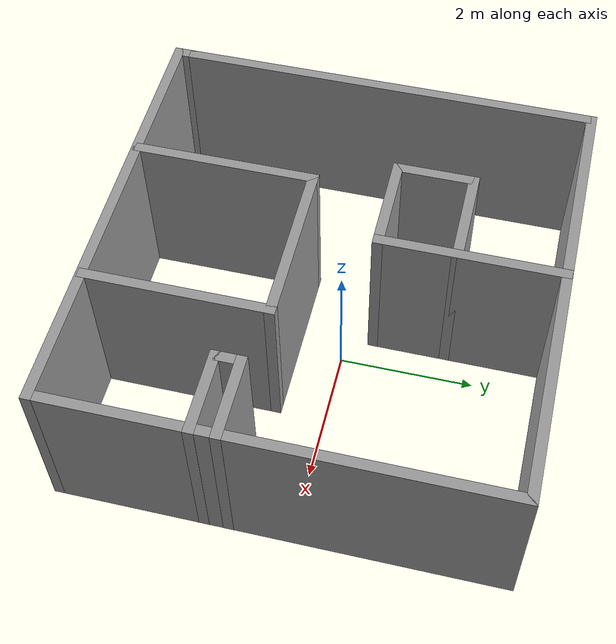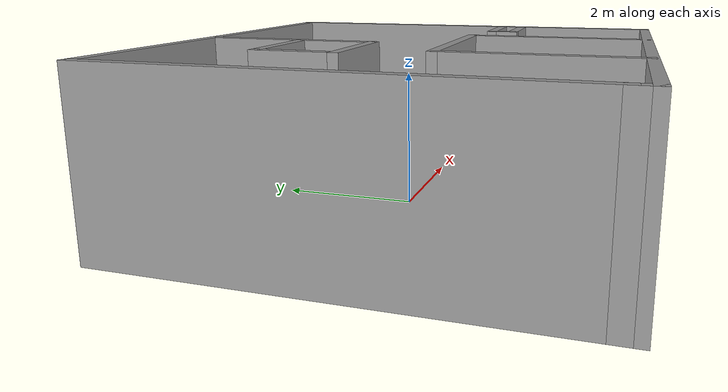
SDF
<?xml version='1.0'?>
<sdf version='1.6'>
  <model name='capstone_model'>
    <pose frame=''>-0.185192 -0.178074 0 0 -0 0</pose>
    <link name='Wall_10'>
      <collision name='Wall_10_Collision'>
        <geometry>
          <box>
            <size>1.25 0.15 2.5</size>
          </box>
        </geometry>
        <pose frame=''>0 0 1.25 0 -0 0</pose>
      </collision>
      <visual name='Wall_10_Visual'>
        <pose frame=''>0 0 1.25 0 -0 0</pose>
        <geometry>
          <box>
            <size>1.25 0.15 2.5</size>
          </box>
        </geometry>
        <material>
          <script>
            <uri>file://media/materials/scripts/gazebo.material</uri>
            <name>Gazebo/Grey</name>
          </script>
          <ambient>1 1 1 1</ambient>
        </material>
        <meta>
          <layer>0</layer>
        </meta>
      </visual>
      <pose frame=''>2.6258 -1.05917 0 0 -0 0</pose>
    </link>
    <link name='Wall_17'>
      <collision name='Wall_17_Collision'>
        <geometry>
          <box>
            <size>2.75 0.15 2.5</size>
          </box>
        </geometry>
        <pose frame=''>0 0 1.25 0 -0 0</pose>
      </collision>
      <visual name='Wall_17_Visual'>
        <pose frame=''>0 0 1.25 0 -0 0</pose>
        <geometry>
          <box>
            <size>2.75 0.15 2.5</size>
          </box>
        </geometry>
        <material>
          <script>
            <uri>file://media/materials/scripts/gazebo.material</uri>
            <name>Gazebo/Grey</name>
          </script>
          <ambient>1 1 1 1</ambient>
        </material>
        <meta>
          <layer>0</layer>
        </meta>
      </visual>
      <pose frame=''>1.2164 -1.84855 0 0 -0 1.5708</pose>
    </link>
    <link name='Wall_18'>
      <collision name='Wall_18_Collision'>
        <geometry>
          <box>
            <size>2.5 0.15 2.5</size>
          </box>
        </geometry>
        <pose frame=''>0 0 1.25 0 -0 0</pose>
      </collision>
      <visual name='Wall_18_Visual'>
        <pose frame=''>0 0 1.25 0 -0 0</pose>
        <geometry>
          <box>
            <size>2.5 0.15 2.5</size>
          </box>
        </geometry>
        <material>
          <script>
            <uri>file://media/materials/scripts/gazebo.material</uri>
            <name>Gazebo/Grey</name>
          </script>
          <ambient>1 1 1 1</ambient>
        </material>
        <meta>
          <layer>0</layer>
        </meta>
      </visual>
      <pose frame=''>0.041405 -0.548555 0 0 -0 3.14159</pose>
    </link>
    <link name='Wall_19'>
      <collision name='Wall_19_Collision'>
        <geometry>
          <box>
            <size>2.75 0.15 2.5</size>
          </box>
        </geometry>
        <pose frame=''>0 0 1.25 0 -0 0</pose>
      </collision>
      <visual name='Wall_19_Visual'>
        <pose frame=''>0 0 1.25 0 -0 0</pose>
        <geometry>
          <box>
            <size>2.75 0.15 2.5</size>
          </box>
        </geometry>
        <material>
          <script>
            <uri>file://media/materials/scripts/gazebo.material</uri>
            <name>Gazebo/Grey</name>
          </script>
          <ambient>1 1 1 1</ambient>
        </material>
        <meta>
          <layer>0</layer>
        </meta>
      </visual>
      <pose frame=''>-1.13359 -1.84855 0 0 -0 -1.5708</pose>
    </link>
    <link name='Wall_2'>
      <collision name='Wall_2_Collision'>
        <geometry>
          <box>
            <size>6.25 0.15 2.5</size>
          </box>
        </geometry>
        <pose frame=''>0 0 1.25 0 -0 0</pose>
      </collision>
      <visual name='Wall_2_Visual'>
        <pose frame=''>0 0 1.25 0 -0 0</pose>
        <geometry>
          <box>
            <size>6.25 0.15 2.5</size>
          </box>
        </geometry>
        <material>
          <script>
            <uri>file://media/materials/scripts/gazebo.material</uri>
            <name>Gazebo/Grey</name>
          </script>
          <ambient>1 1 1 1</ambient>
        </material>
        <meta>
          <layer>0</layer>
        </meta>
      </visual>
      <pose frame=''>-3.1758 0.125 0 0 -0 1.5708</pose>
    </link>
    <link name='Wall_21'>
      <collision name='Wall_21_Collision'>
        <geometry>
          <box>
            <size>2.73685 0.15 2.5</size>
          </box>
        </geometry>
        <pose frame=''>0 0 1.25 0 -0 0</pose>
      </collision>
      <visual name='Wall_21_Visual'>
        <pose frame=''>0 0 1.25 0 -0 0</pose>
        <geometry>
          <box>
            <size>2.73685 0.15 2.5</size>
          </box>
        </geometry>
        <material>
          <script>
            <uri>file://media/materials/scripts/gazebo.material</uri>
            <name>Gazebo/Grey</name>
          </script>
          <ambient>1 1 1 1</ambient>
        </material>
        <meta>
          <layer>0</layer>
        </meta>
      </visual>
      <pose frame=''>-0.256431 1.87675 0 0 -0 -1.5708</pose>
    </link>
    <link name='Wall_24'>
      <collision name='Wall_24_Collision'>
        <geometry>
          <box>
            <size>1.5 0.15 2.5</size>
          </box>
        </geometry>
        <pose frame=''>0 0 1.25 0 -0 0</pose>
      </collision>
      <visual name='Wall_24_Visual'>
        <pose frame=''>0 0 1.25 0 -0 0</pose>
        <geometry>
          <box>
            <size>1.5 0.15 2.5</size>
          </box>
        </geometry>
        <material>
          <script>
            <uri>file://media/materials/scripts/gazebo.material</uri>
            <name>Gazebo/Grey</name>
          </script>
          <ambient>1 1 1 1</ambient>
        </material>
        <meta>
          <layer>0</layer>
        </meta>
      </visual>
      <pose frame=''>-0.931431 0.583326 0 0 -0 3.14159</pose>
    </link>
    <link name='Wall_25'>
      <collision name='Wall_25_Collision'>
        <geometry>
          <box>
            <size>1.25 0.15 2.5</size>
          </box>
        </geometry>
        <pose frame=''>0 0 1.25 0 -0 0</pose>
      </collision>
      <visual name='Wall_25_Visual'>
        <pose frame=''>0 0 1.25 0 -0 0</pose>
        <geometry>
          <box>
            <size>1.25 0.15 2.5</size>
          </box>
        </geometry>
        <material>
          <script>
            <uri>file://media/materials/scripts/gazebo.material</uri>
            <name>Gazebo/Grey</name>
          </script>
          <ambient>1 1 1 1</ambient>
        </material>
        <meta>
          <layer>0</layer>
        </meta>
      </visual>
      <pose frame=''>-1.60643 1.13333 0 0 -0 1.5708</pose>
    </link>
    <link name='Wall_26'>
      <collision name='Wall_26_Collision'>
        <geometry>
          <box>
            <size>1.5 0.15 2.5</size>
          </box>
        </geometry>
        <pose frame=''>0 0 1.25 0 -0 0</pose>
      </collision>
      <visual name='Wall_26_Visual'>
        <pose frame=''>0 0 1.25 0 -0 0</pose>
        <geometry>
          <box>
            <size>1.5 0.15 2.5</size>
          </box>
        </geometry>
        <material>
          <script>
            <uri>file://media/materials/scripts/gazebo.material</uri>
            <name>Gazebo/Grey</name>
          </script>
          <ambient>1 1 1 1</ambient>
        </material>
        <meta>
          <layer>0</layer>
        </meta>
      </visual>
      <pose frame=''>-0.931431 1.68333 0 0 -0 0</pose>
    </link>
    <link name='Wall_3'>
      <collision name='Wall_3_Collision'>
        <geometry>
          <box>
            <size>6.5 0.15 2.5</size>
          </box>
        </geometry>
        <pose frame=''>0 0 1.25 0 -0 0</pose>
      </collision>
      <visual name='Wall_3_Visual'>
        <pose frame=''>0 0 1.25 0 -0 0</pose>
        <geometry>
          <box>
            <size>6.5 0.15 2.5</size>
          </box>
        </geometry>
        <material>
          <script>
            <uri>file://media/materials/scripts/gazebo.material</uri>
            <name>Gazebo/Grey</name>
          </script>
          <ambient>1 1 1 1</ambient>
        </material>
        <meta>
          <layer>0</layer>
        </meta>
      </visual>
      <pose frame=''>-0.000803 3.175 0 0 -0 0</pose>
    </link>
    <link name='Wall_4'>
      <collision name='Wall_4_Collision'>
        <geometry>
          <box>
            <size>6.5 0.15 2.5</size>
          </box>
        </geometry>
        <pose frame=''>0 0 1.25 0 -0 0</pose>
      </collision>
      <visual name='Wall_4_Visual'>
        <pose frame=''>0 0 1.25 0 -0 0</pose>
        <geometry>
          <box>
            <size>6.5 0.15 2.5</size>
          </box>
        </geometry>
        <material>
          <script>
            <uri>file://media/materials/scripts/gazebo.material</uri>
            <name>Gazebo/Grey</name>
          </script>
          <ambient>1 1 1 1</ambient>
        </material>
        <meta>
          <layer>0</layer>
        </meta>
      </visual>
      <pose frame=''>3.1742 0 0 0 -0 -1.5708</pose>
    </link>
    <link name='Wall_5'>
      <collision name='Wall_5_Collision'>
        <geometry>
          <box>
            <size>6.5 0.15 2.5</size>
          </box>
        </geometry>
        <pose frame=''>0 0 1.25 0 -0 0</pose>
      </collision>
      <visual name='Wall_5_Visual'>
        <pose frame=''>0 0 1.25 0 -0 0</pose>
        <geometry>
          <box>
            <size>6.5 0.15 2.5</size>
          </box>
        </geometry>
        <material>
          <script>
            <uri>file://media/materials/scripts/gazebo.material</uri>
            <name>Gazebo/Grey</name>
          </script>
          <ambient>1 1 1 1</ambient>
        </material>
        <meta>
          <layer>0</layer>
        </meta>
      </visual>
      <pose frame=''>-0.000803 -3.175 0 0 -0 3.14159</pose>
    </link>
    <link name='Wall_6'>
      <collision name='Wall_6_Collision'>
        <geometry>
          <box>
            <size>0.4 0.15 2.5</size>
          </box>
        </geometry>
        <pose frame=''>0 0 1.25 0 -0 0</pose>
      </collision>
      <visual name='Wall_6_Visual'>
        <pose frame=''>0 0 1.25 0 -0 0</pose>
        <geometry>
          <box>
            <size>0.4 0.15 2.5</size>
          </box>
        </geometry>
        <material>
          <script>
            <uri>file://media/materials/scripts/gazebo.material</uri>
            <name>Gazebo/Grey</name>
          </script>
          <ambient>1 1 1 1</ambient>
        </material>
        <meta>
          <layer>0</layer>
        </meta>
      </visual>
      <pose frame=''>-3.1758 -3.05 0 0 -0 1.5708</pose>
    </link>
    <link name='Wall_8'>
      <collision name='Wall_8_Collision'>
        <geometry>
          <box>
            <size>1.25 0.15 2.5</size>
          </box>
        </geometry>
        <pose frame=''>0 0 1.25 0 -0 0</pose>
      </collision>
      <visual name='Wall_8_Visual'>
        <pose frame=''>0 0 1.25 0 -0 0</pose>
        <geometry>
          <box>
            <size>1.25 0.15 2.5</size>
          </box>
        </geometry>
        <material>
          <script>
            <uri>file://media/materials/scripts/gazebo.material</uri>
            <name>Gazebo/Grey</name>
          </script>
          <ambient>1 1 1 1</ambient>
        </material>
        <meta>
          <layer>0</layer>
        </meta>
      </visual>
      <pose frame=''>2.6258 -0.70917 0 0 -0 3.14159</pose>
    </link>
    <link name='Wall_9'>
      <collision name='Wall_9_Collision'>
        <geometry>
          <box>
            <size>0.5 0.15 2.5</size>
          </box>
        </geometry>
        <pose frame=''>0 0 1.25 0 -0 0</pose>
      </collision>
      <visual name='Wall_9_Visual'>
        <pose frame=''>0 0 1.25 0 -0 0</pose>
        <geometry>
          <box>
            <size>0.5 0.15 2.5</size>
          </box>
        </geometry>
        <material>
          <script>
            <uri>file://media/materials/scripts/gazebo.material</uri>
            <name>Gazebo/Grey</name>
          </script>
          <ambient>1 1 1 1</ambient>
        </material>
        <meta>
          <layer>0</layer>
        </meta>
      </visual>
      <pose frame=''>2.0758 -0.88417 0 0 -0 -1.5708</pose>
    </link>
    <static>1</static>
  </model>
</sdf>
